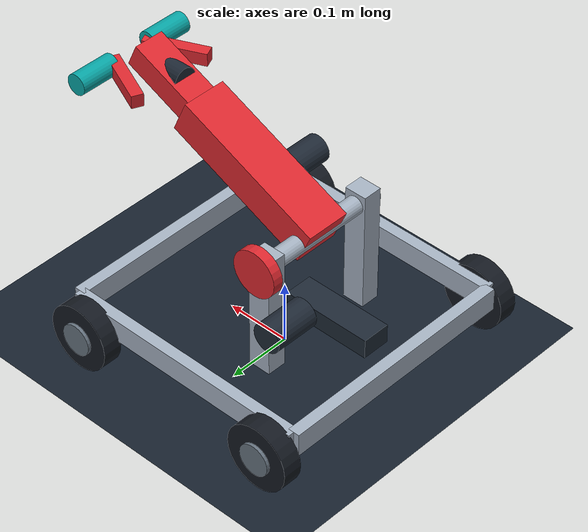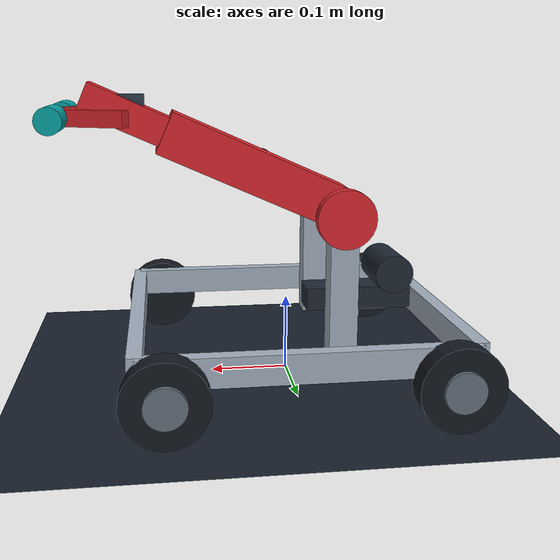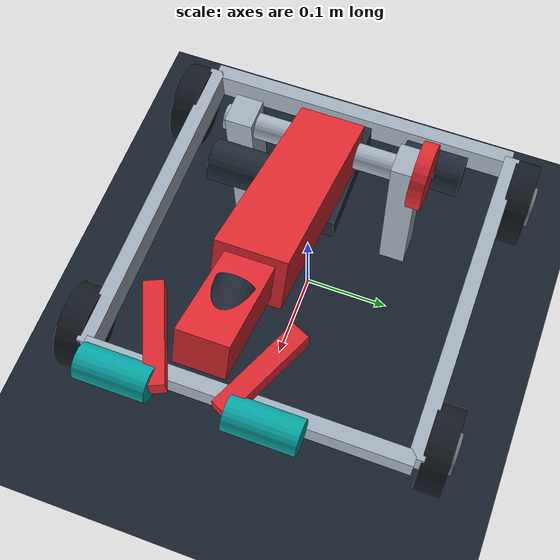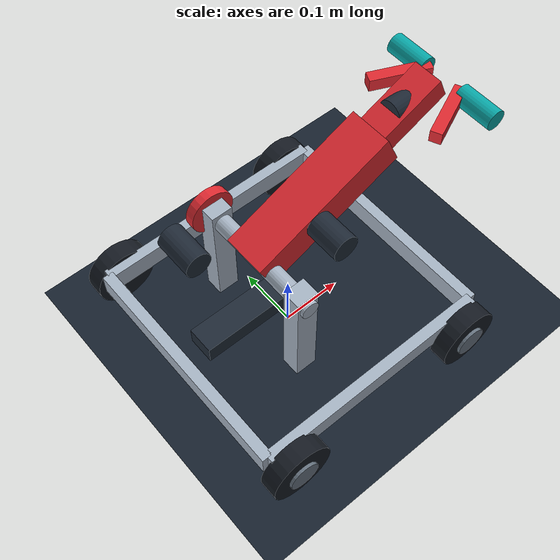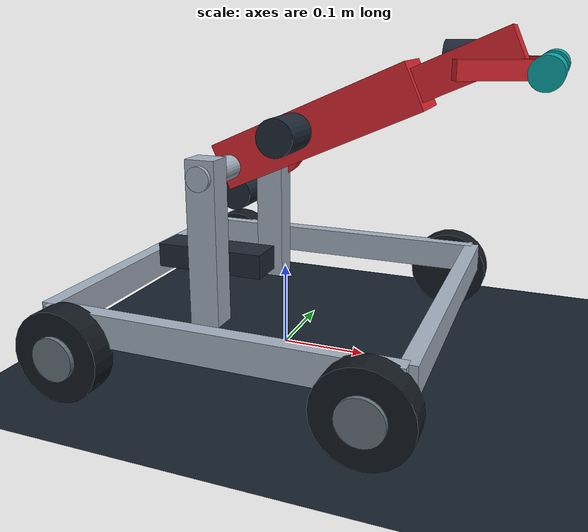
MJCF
<mujoco model="Shoulder-Slide Cup Tongs"><compiler angle="degree" /><visual><global offwidth="800" offheight="600" /><quality offsamples="0" /><headlight ambient=".45 .45 .45" /></visual><worldbody><light pos="0 -1 3" castshadow="false" /><geom type="plane" size="2 2 .1" rgba=".09 .13 .18 1" /><geom type="box" pos="0 -0.1925 0.0758" size="0.1975 0.009 0.018" euler="0 0 0" rgba=".65 .7 .76 1" contype="0" conaffinity="0" /><geom type="box" pos="0 0.1925 0.0758" size="0.1975 0.009 0.018" euler="0 0 0" rgba=".65 .7 .76 1" contype="0" conaffinity="0" /><geom type="box" pos="-0.1975 0 0.0758" size="0.009 0.1925 0.018" euler="0 0 0" rgba=".65 .7 .76 1" contype="0" conaffinity="0" /><geom type="box" pos="0.1975 0 0.0758" size="0.009 0.1925 0.018" euler="0 0 0" rgba=".65 .7 .76 1" contype="0" conaffinity="0" /><geom type="cylinder" pos="-0.165 -0.2135 0.0508" size="0.0508 0.015" euler="90 0 0" rgba=".08 .1 .13 1" contype="0" conaffinity="0" /><geom type="cylinder" pos="-0.165 -0.2305 0.0508" size="0.024384 0.003" euler="90 0 0" rgba=".4 .45 .5 1" contype="0" conaffinity="0" /><geom type="cylinder" pos="0.165 -0.2135 0.0508" size="0.0508 0.015" euler="90 0 0" rgba=".08 .1 .13 1" contype="0" conaffinity="0" /><geom type="cylinder" pos="0.165 -0.2305 0.0508" size="0.024384 0.003" euler="90 0 0" rgba=".4 .45 .5 1" contype="0" conaffinity="0" /><geom type="cylinder" pos="-0.165 0.2135 0.0508" size="0.0508 0.015" euler="90 0 0" rgba=".08 .1 .13 1" contype="0" conaffinity="0" /><geom type="cylinder" pos="-0.165 0.2305 0.0508" size="0.024384 0.003" euler="90 0 0" rgba=".4 .45 .5 1" contype="0" conaffinity="0" /><geom type="cylinder" pos="0.165 0.2135 0.0508" size="0.0508 0.015" euler="90 0 0" rgba=".08 .1 .13 1" contype="0" conaffinity="0" /><geom type="cylinder" pos="0.165 0.2305 0.0508" size="0.024384 0.003" euler="90 0 0" rgba=".4 .45 .5 1" contype="0" conaffinity="0" /><geom type="box" pos="-0.095 0.0 0.1008" size="0.07 0.022 0.015" euler="0 0 0" rgba=".12 .16 .21 1" contype="0" conaffinity="0" /><geom type="box" pos="-0.055 0.092 0.15" size="0.0175 0.015 0.095" euler="0.0 0.0 0.0" rgba=".65 .7 .76 1" contype="0" conaffinity="0" /><geom type="box" pos="-0.055 -0.092 0.15" size="0.0175 0.015 0.095" euler="0.0 0.0 0.0" rgba=".65 .7 .76 1" contype="0" conaffinity="0" /><geom type="cylinder" pos="-0.055 0.0 0.225" size="0.014 0.1125" euler="90.0 0.0 0.0" rgba=".65 .7 .76 1" contype="0" conaffinity="0" /><geom type="box" pos="0.045 0.0 0.273" size="0.1225 0.035 0.0275" euler="0.0 -24.0 0.0" rgba=".87 .16 .19 1" contype="0" conaffinity="0" /><geom type="box" pos="0.171 0.0 0.329" size="0.0925 0.024 0.019" euler="0.0 -24.0 0.0" rgba=".87 .16 .19 1" contype="0" conaffinity="0" /><geom type="box" pos="0.116 0.0 0.296" size="0.09 0.006 0.006" euler="0.0 -24.0 0.0" rgba=".87 .16 .19 1" contype="0" conaffinity="0" /><geom type="box" pos="0.245 0.048 0.342" size="0.0475 0.009 0.01" euler="0.0 0.0 -24.0" rgba=".87 .16 .19 1" contype="0" conaffinity="0" /><geom type="box" pos="0.245 -0.048 0.342" size="0.0475 0.009 0.01" euler="0.0 0.0 24.0" rgba=".87 .16 .19 1" contype="0" conaffinity="0" /><geom type="cylinder" pos="0.286 0.066 0.342" size="0.016 0.0325" euler="90.0 0.0 0.0" rgba=".03 .65 .65 1" contype="0" conaffinity="0" /><geom type="cylinder" pos="0.286 -0.066 0.342" size="0.016 0.0325" euler="90.0 0.0 0.0" rgba=".03 .65 .65 1" contype="0" conaffinity="0" /><geom type="cylinder" pos="-0.055 0.108 0.225" size="0.036 0.008" euler="90.0 0.0 0.0" rgba=".87 .16 .19 1" contype="0" conaffinity="0" /><geom type="cylinder" pos="-0.105 0.11 0.165" size="0.0225 0.035" euler="90.0 0.0 0.0" rgba=".12 .16 .21 1" contype="0" conaffinity="0" /><geom type="cylinder" pos="0.025 -0.058 0.27" size="0.021 0.0325" euler="90.0 0.0 0.0" rgba=".12 .16 .21 1" contype="0" conaffinity="0" /><geom type="cylinder" pos="0.208 0.0 0.35" size="0.019 0.0275" euler="0.0 90.0 0.0" rgba=".12 .16 .21 1" contype="0" conaffinity="0" /></worldbody></mujoco>
